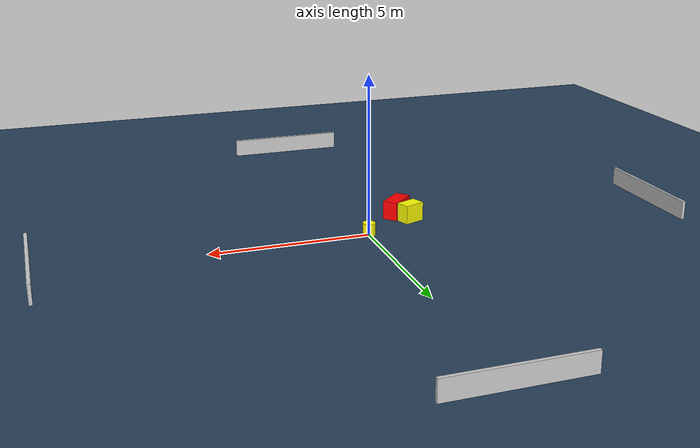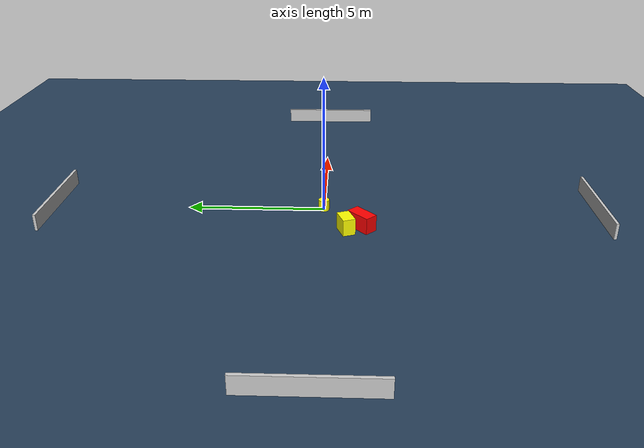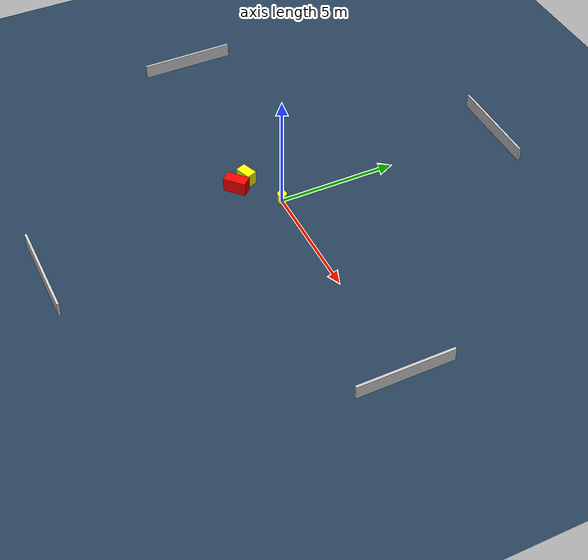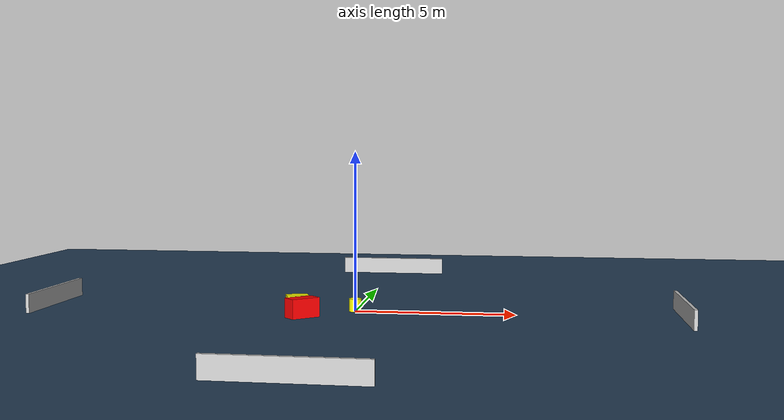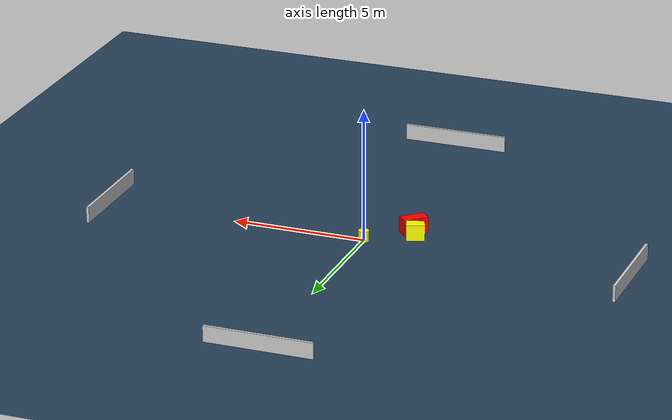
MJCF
<?xml version="1.0" ?>
<mujoco model="generated_environment">
  <option timestep="0.01" integrator="RK4" cone="elliptic"/>
  <default>
    <geom density="1"/>
  </default>
  <asset>
    <texture builtin="gradient" height="3072" name="skybox" rgb1="0.3 0.5 0.7" rgb2="0 0 0" type="skybox" width="512"/>
    <texture builtin="checker" height="300" name="groundplane" rgb1="0.2 0.3 0.4" rgb2="0.1 0.2 0.3" type="2d" width="300"/>
    <material name="groundplane" reflectance="0.2" texrepeat="5 5" texture="groundplane"/>
  </asset>
  <worldbody>
    <light dir="0 0 -1" directional="true" pos="0 0 1.5"/>
    <geom condim="3" friction="0.5 0.005 0.001" material="groundplane" name="floor" pos="0 0 0" size="0 0 0.05" type="plane"/>
    <body name="walls">
      <geom name="wall_1" condim="4" pos="-10.0 0.0 0.3" rgba="0.800000011920929 0.800000011920929 0.800000011920929 1.0" size="0.05 2.0 0.3" type="box"/>
      <geom name="wall_2" condim="4" pos="10.0 0.0 0.3" rgba="0.800000011920929 0.800000011920929 0.800000011920929 1.0" size="0.05 2.0 0.3" type="box"/>
      <geom name="wall_3" condim="4" pos="0.0 -10.0 0.3" rgba="0.800000011920929 0.800000011920929 0.800000011920929 1.0" size="2.0 0.05 0.3" type="box"/>
      <geom name="wall_4" condim="4" pos="0.0 10.0 0.3" rgba="0.800000011920929 0.800000011920929 0.800000011920929 1.0" size="2.0 0.05 0.3" type="box"/>
    </body>
    <body name="robot">
      <joint name="joint_x" type="slide" pos="0 0 0" axis="1 0 0"/>
      <joint name="joint_y" type="slide" pos="0 0 0" axis="0 1 0"/>
      <geom name="robot" type="cylinder" pos="0.0 0.0 0.2" size="0.2 0.2 0.0" mass="5.0" friction="1.0 0.005 0.0001" condim="4" rgba="1.0 1.0 0.0 1.0"/>
    </body>
    <body name="obstacle_1_movable">
      <geom name="obstacle_1_movable" condim="4" pos="-1.6813133873751196 -0.817797183632481 0.3" euler="0 0 20.411144739595972" friction="0.0 0.005 0.001" rgba="1.0 1.0 0.0 1.0" size="0.34104719213481866 0.22621283372591663 0.3" type="box" mass="0.1"/>
      <joint type="free"/>
    </body>
    <body name="obstacle_2_static">
      <geom name="obstacle_2_static" condim="4" pos="-1.4217204814821276 -1.3755172973218586 0.3" euler="0 0 313.1805880623612" friction="0.0 0.005 0.001" rgba="1.0 0.0 0.0 1.0" size="0.23981877141386526 0.4747335867566687 0.3" type="box"/>
    </body>
  </worldbody>
  <actuator>
    <motor name="actuator_x" joint="joint_x" gear="1" ctrlrange="-1 1"/>
    <motor name="actuator_y" joint="joint_y" gear="1" ctrlrange="-1 1"/>
  </actuator>
</mujoco>
